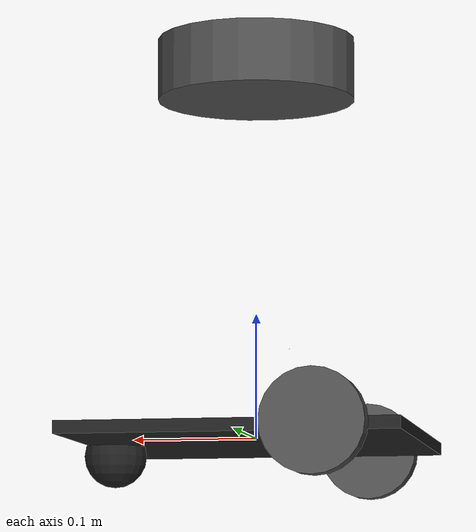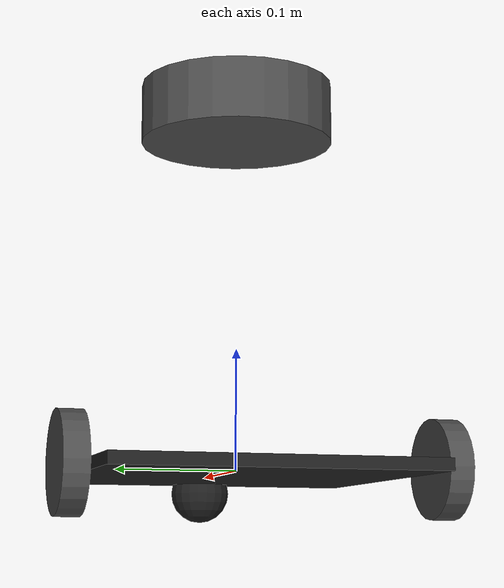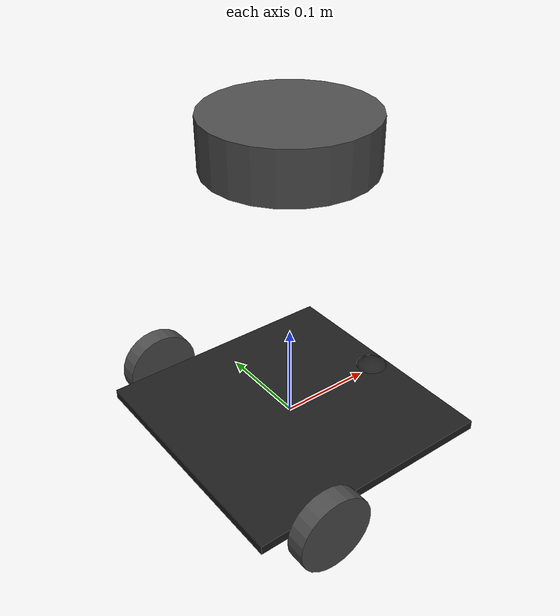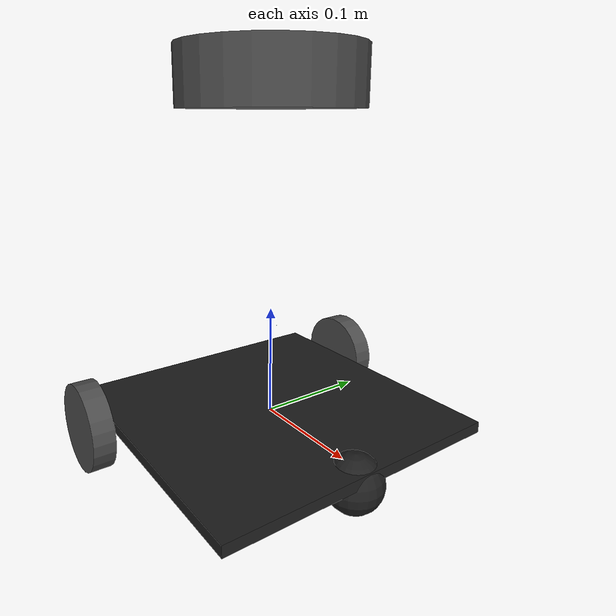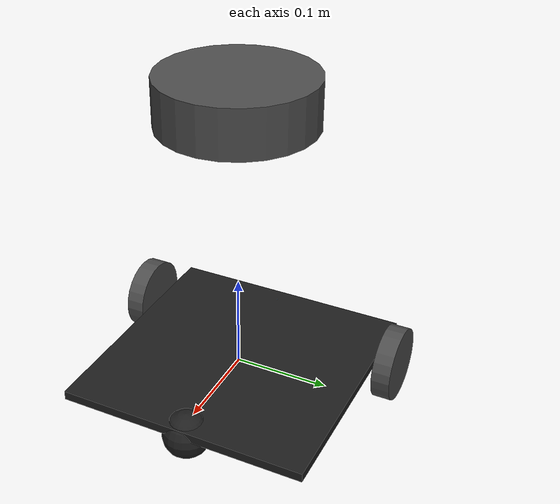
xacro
<?xml version="1.0" ?>
<robot name="turtlebot3_waffle" xmlns:xacro="http://ros.org/wiki/xacro">
  <xacro:include filename="$(find robot_simulator)/urdf/turtlebot3_waffle.gazebo.xacro"/>

  <xacro:property name="r200_cam_rgb_px" value="0.005"/>
  <xacro:property name="r200_cam_rgb_py" value="0.018"/>
  <xacro:property name="r200_cam_rgb_pz" value="0.013"/>
  <xacro:property name="r200_cam_depth_offset" value="0.01"/>
  <xacro:property name="M_PI" value="3.1415926535897931" />

  <link name="base_link">
    <visual>
      <origin xyz="0 0 0" rpy="0 0 0"/>
      <geometry>
        <box size="0.266 0.266 0.01"/>
      </geometry>
      <material name="light_black"/>
    </visual>

    <collision>
      <origin xyz="0 0 0" rpy="0 0 0"/>
      <geometry>
        <box size="0.266 0.266 0.002"/>
      </geometry>
    </collision>

    <inertial>
      <origin xyz="0 0 0" rpy="0 0 0"/>
      <mass value="100.37"/>
      <inertia ixx="8.7002718e-03" ixy="-4.7576583e-05" ixz="1.1160499e-04"
               iyy="8.6195418e-03" iyz="-3.5422299e-06"
               izz="1.4612727e-02" />
    </inertial>
  </link>

  <joint name="imu_joint" type="fixed">
    <parent link="base_link"/>
    <child link="imu_link"/>
    <origin xyz="-0.032 0.03 0.068" rpy="0 0 0"/>
  </joint>

  <joint name="scan_joint" type="fixed">
      <parent link="base_link"/>
      <child link="base_laser_link"/>
      <origin xyz="0.0 0 0.3" rpy="0 0 0"/>
  </joint>

  <link name="imu_link">
    <visual>
        <origin xyz="0 0 0" rpy="0 0 0"/>
        <geometry>
            <box size="0.0002 0.0002 0.0002"/>
        </geometry>
    </visual>
  </link>

  <link name="base_laser_link">
    <visual>
      <origin xyz="0 0 0" rpy="0 0 0"/>
      <geometry>
        <cylinder length="0.05" radius="0.08"/>
      </geometry>
      <material name="dark"/>
    </visual>
    <collision>
      <origin rpy="0 0 0" xyz="0 0 0"/>
      <geometry>
        <cylinder length="0.000408" radius="0.00070"/>
      </geometry>
    </collision>
    <inertial>
      <mass value="0.1" />
      <origin xyz="0 0 0" />
      <inertia ixx="0.1" ixy="0.0" ixz="0.0"
               iyy="0.1" iyz="0.0"
               izz="0.1" />
    </inertial>
  </link>

  <!-- wheels  -->
  <!-- https://github.com/qboticslabs/mastering_ros/blob/master/chapter_2_codes/mastering_ros_robot_description_pkg/urdf/diff_wheeled_robot.urdf -->
  <!--fb : front, back ; lr: left, right -->
  <link name="front_right_wheel">
    <visual>
      <origin rpy="1.57079632679 0  0 " xyz="0 0 0"/>
      <geometry>
        <cylinder length="0.02" radius="0.04"/>
      </geometry>
      <material name="DarkGray"/>
    </visual>
    <collision>
      <origin rpy="1.57079632679 0 0 " xyz="0 0 0"/>
      <geometry>
        <cylinder length="0.02" radius="0.04"/>
      </geometry>
    </collision>
    <inertial>
      <mass value="2.5"/>
      <origin xyz="0 0 0"/>
      <inertia ixx="0.00108333333333" ixy="0" ixz="0" iyy="0.00108333333333" iyz="0" izz="0.002"/>
    </inertial>
  </link>

  <joint name="front_right_wheel_joint" type="continuous">
    <parent link="base_link"/>
    <child link="front_right_wheel"/>
    <origin rpy="0 0 0" xyz="-0.07 -0.15 0.0"/>
    <axis rpy="0  0" xyz="0 1 0"/>
    <limit effort="100" velocity="100"/>
    <joint_properties damping="0.0" friction="0.0"/>
  </joint>
  <!-- Transmission is important to link the joints and the controller -->

  <!--fb : front, back ; lr: left, right -->
  <link name="front_left_wheel">
    <visual>
      <origin rpy="1.57079632679 0  0 " xyz="0 0 0"/>
      <geometry>
        <cylinder length="0.02" radius="0.04"/>
      </geometry>
      <material name="DarkGray"/>
    </visual>
    <collision>
      <origin rpy="1.57079632679 0 0 " xyz="0 0 0"/>
      <geometry>
        <cylinder length="0.02" radius="0.04"/>
      </geometry>
    </collision>
    <inertial>
      <mass value="2.5"/>
      <origin xyz="0 0 0"/>
      <inertia ixx="0.00108333333333" ixy="0" ixz="0" iyy="0.00108333333333" iyz="0" izz="0.002"/>
    </inertial>
  </link>

  <joint name="front_left_wheel_joint" type="continuous">
    <parent link="base_link"/>
    <child link="front_left_wheel"/>
    <origin rpy="0 0 0" xyz="-0.07 0.15 0.0"/>
    <axis rpy="0  0" xyz="0 1 0"/>
    <limit effort="100" velocity="100"/>
    <joint_properties damping="0.0" friction="0.0"/>
  </joint>
  <!-- Transmission is important to link the joints and the controller -->

  <!--Caster front  -->
  <link name="caster_front_link">
    <visual>
      <origin rpy="1.57079632679 0 0" xyz="0 0.02 0"/>
      <geometry>
        <sphere radius="0.025"/>
      </geometry>
      <material name="Black"/>
    </visual>
    <collision>
      <geometry>
        <sphere radius="0.025"/>
      </geometry>
      <origin rpy="1.57079632679 0 0" xyz="0 0.02 0"/>
    </collision>
    <inertial>
      <mass value="0.5"/>
      <origin xyz="0 0 0"/>
      <inertia ixx="0.001" ixy="0.0" ixz="0.0" iyy="0.001" iyz="0.0" izz="0.001"/>
    </inertial>
</link>

<joint name="caster_front_joint" type="fixed">
    <parent link="base_link"/>
    <child link="caster_front_link"/>
    <origin rpy="-1.57079632679 0 0" xyz="0.115 0.0 0.007"/>
</joint>

<!--Caster back  -->

</robot>
